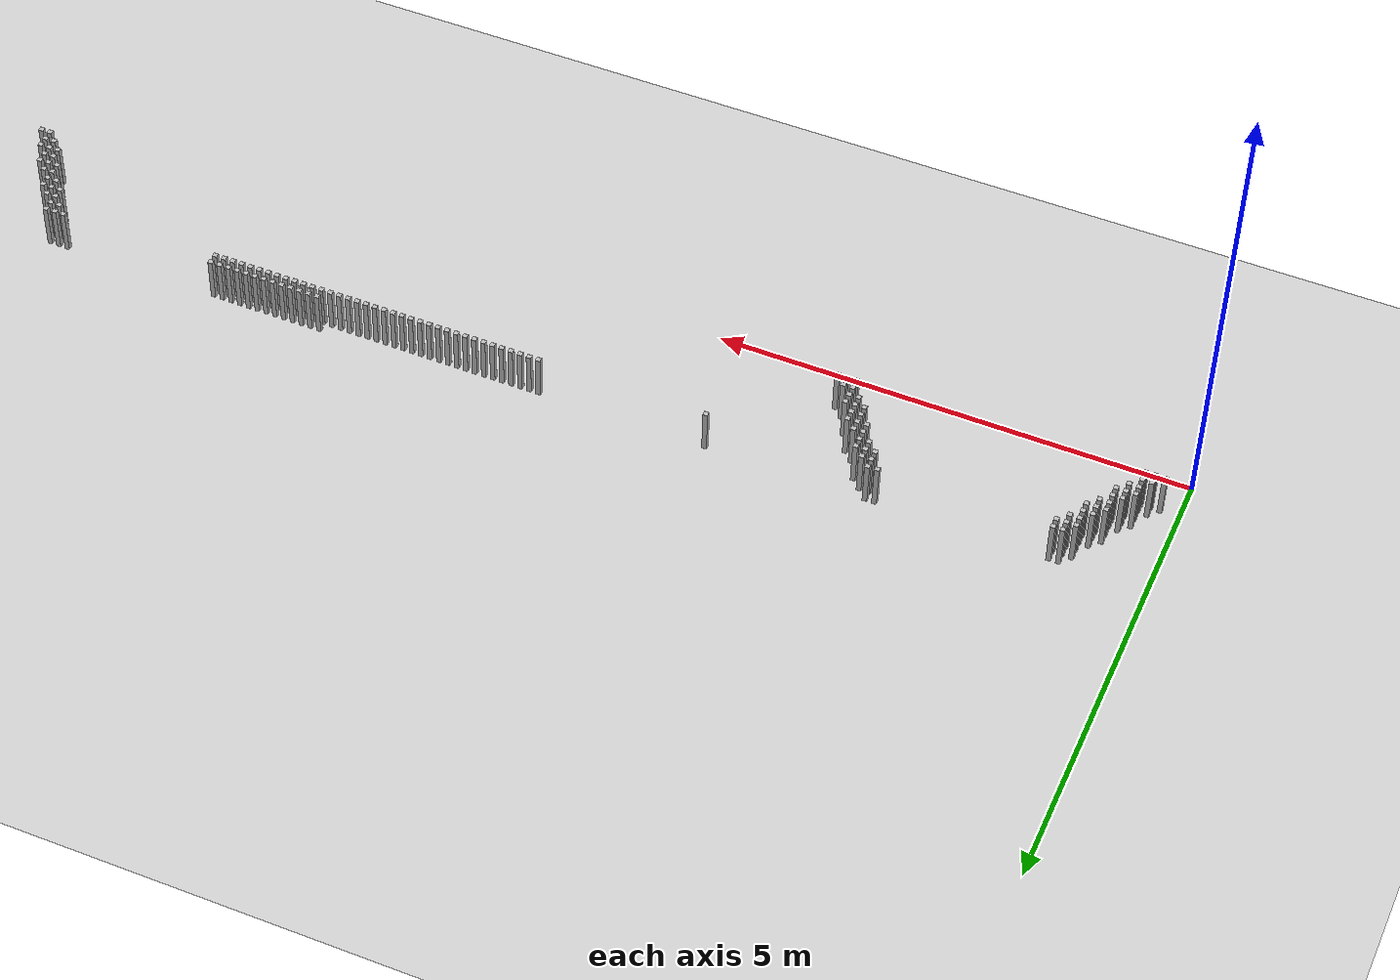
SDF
<sdf version="1.6">
 <world name="default_world">
  <include><uri>model://sun</uri></include>
  <include><uri>model://ground_plane</uri></include>
  <model name="wall_916">
   <static>true</static>
   <link name="link">
    <collision name="collision"><geometry><box><size>0.05 0.05 0.5</size></box></geometry></collision>
    <visual name="visual"><geometry><box><size>0.05 0.05 0.5</size></box></geometry></visual>
    <pose>8.8 1.5 0.25 0 0 0</pose>
   </link>
  </model>
  <model name="wall_917">
   <static>true</static>
   <link name="link">
    <collision name="collision"><geometry><box><size>0.05 0.05 0.5</size></box></geometry></collision>
    <visual name="visual"><geometry><box><size>0.05 0.05 0.5</size></box></geometry></visual>
    <pose>8.9 1.5 0.25 0 0 0</pose>
   </link>
  </model>
  <model name="wall_918">
   <static>true</static>
   <link name="link">
    <collision name="collision"><geometry><box><size>0.05 0.05 0.5</size></box></geometry></collision>
    <visual name="visual"><geometry><box><size>0.05 0.05 0.5</size></box></geometry></visual>
    <pose>9.0 1.5 0.25 0 0 0</pose>
   </link>
  </model>
  <model name="wall_919">
   <static>true</static>
   <link name="link">
    <collision name="collision"><geometry><box><size>0.05 0.05 0.5</size></box></geometry></collision>
    <visual name="visual"><geometry><box><size>0.05 0.05 0.5</size></box></geometry></visual>
    <pose>9.1 1.5 0.25 0 0 0</pose>
   </link>
  </model>
  <model name="wall_920">
   <static>true</static>
   <link name="link">
    <collision name="collision"><geometry><box><size>0.05 0.05 0.5</size></box></geometry></collision>
    <visual name="visual"><geometry><box><size>0.05 0.05 0.5</size></box></geometry></visual>
    <pose>9.200000000000001 1.5 0.25 0 0 0</pose>
   </link>
  </model>
  <model name="wall_921">
   <static>true</static>
   <link name="link">
    <collision name="collision"><geometry><box><size>0.05 0.05 0.5</size></box></geometry></collision>
    <visual name="visual"><geometry><box><size>0.05 0.05 0.5</size></box></geometry></visual>
    <pose>9.3 1.5 0.25 0 0 0</pose>
   </link>
  </model>
  <model name="wall_922">
   <static>true</static>
   <link name="link">
    <collision name="collision"><geometry><box><size>0.05 0.05 0.5</size></box></geometry></collision>
    <visual name="visual"><geometry><box><size>0.05 0.05 0.5</size></box></geometry></visual>
    <pose>9.4 1.5 0.25 0 0 0</pose>
   </link>
  </model>
  <model name="wall_923">
   <static>true</static>
   <link name="link">
    <collision name="collision"><geometry><box><size>0.05 0.05 0.5</size></box></geometry></collision>
    <visual name="visual"><geometry><box><size>0.05 0.05 0.5</size></box></geometry></visual>
    <pose>9.5 1.5 0.25 0 0 0</pose>
   </link>
  </model>
  <model name="wall_924">
   <static>true</static>
   <link name="link">
    <collision name="collision"><geometry><box><size>0.05 0.05 0.5</size></box></geometry></collision>
    <visual name="visual"><geometry><box><size>0.05 0.05 0.5</size></box></geometry></visual>
    <pose>9.600000000000001 1.5 0.25 0 0 0</pose>
   </link>
  </model>
  <model name="wall_925">
   <static>true</static>
   <link name="link">
    <collision name="collision"><geometry><box><size>0.05 0.05 0.5</size></box></geometry></collision>
    <visual name="visual"><geometry><box><size>0.05 0.05 0.5</size></box></geometry></visual>
    <pose>9.700000000000001 1.5 0.25 0 0 0</pose>
   </link>
  </model>
  <model name="wall_926">
   <static>true</static>
   <link name="link">
    <collision name="collision"><geometry><box><size>0.05 0.05 0.5</size></box></geometry></collision>
    <visual name="visual"><geometry><box><size>0.05 0.05 0.5</size></box></geometry></visual>
    <pose>9.8 1.5 0.25 0 0 0</pose>
   </link>
  </model>
  <model name="wall_927">
   <static>true</static>
   <link name="link">
    <collision name="collision"><geometry><box><size>0.05 0.05 0.5</size></box></geometry></collision>
    <visual name="visual"><geometry><box><size>0.05 0.05 0.5</size></box></geometry></visual>
    <pose>9.9 1.5 0.25 0 0 0</pose>
   </link>
  </model>
  <model name="wall_928">
   <static>true</static>
   <link name="link">
    <collision name="collision"><geometry><box><size>0.05 0.05 0.5</size></box></geometry></collision>
    <visual name="visual"><geometry><box><size>0.05 0.05 0.5</size></box></geometry></visual>
    <pose>10.0 1.5 0.25 0 0 0</pose>
   </link>
  </model>
  <model name="wall_929">
   <static>true</static>
   <link name="link">
    <collision name="collision"><geometry><box><size>0.05 0.05 0.5</size></box></geometry></collision>
    <visual name="visual"><geometry><box><size>0.05 0.05 0.5</size></box></geometry></visual>
    <pose>11.700000000000001 1.5 0.25 0 0 0</pose>
   </link>
  </model>
  <model name="wall_930">
   <static>true</static>
   <link name="link">
    <collision name="collision"><geometry><box><size>0.05 0.05 0.5</size></box></geometry></collision>
    <visual name="visual"><geometry><box><size>0.05 0.05 0.5</size></box></geometry></visual>
    <pose>11.8 1.5 0.25 0 0 0</pose>
   </link>
  </model>
  <model name="wall_931">
   <static>true</static>
   <link name="link">
    <collision name="collision"><geometry><box><size>0.05 0.05 0.5</size></box></geometry></collision>
    <visual name="visual"><geometry><box><size>0.05 0.05 0.5</size></box></geometry></visual>
    <pose>11.9 1.5 0.25 0 0 0</pose>
   </link>
  </model>
  <model name="wall_932">
   <static>true</static>
   <link name="link">
    <collision name="collision"><geometry><box><size>0.05 0.05 0.5</size></box></geometry></collision>
    <visual name="visual"><geometry><box><size>0.05 0.05 0.5</size></box></geometry></visual>
    <pose>0.9 1.4000000000000001 0.25 0 0 0</pose>
   </link>
  </model>
  <model name="wall_933">
   <static>true</static>
   <link name="link">
    <collision name="collision"><geometry><box><size>0.05 0.05 0.5</size></box></geometry></collision>
    <visual name="visual"><geometry><box><size>0.05 0.05 0.5</size></box></geometry></visual>
    <pose>1.0 1.4000000000000001 0.25 0 0 0</pose>
   </link>
  </model>
  <model name="wall_934">
   <static>true</static>
   <link name="link">
    <collision name="collision"><geometry><box><size>0.05 0.05 0.5</size></box></geometry></collision>
    <visual name="visual"><geometry><box><size>0.05 0.05 0.5</size></box></geometry></visual>
    <pose>2.8000000000000003 1.4000000000000001 0.25 0 0 0</pose>
   </link>
  </model>
  <model name="wall_935">
   <static>true</static>
   <link name="link">
    <collision name="collision"><geometry><box><size>0.05 0.05 0.5</size></box></geometry></collision>
    <visual name="visual"><geometry><box><size>0.05 0.05 0.5</size></box></geometry></visual>
    <pose>2.9000000000000004 1.4000000000000001 0.25 0 0 0</pose>
   </link>
  </model>
  <model name="wall_936">
   <static>true</static>
   <link name="link">
    <collision name="collision"><geometry><box><size>0.05 0.05 0.5</size></box></geometry></collision>
    <visual name="visual"><geometry><box><size>0.05 0.05 0.5</size></box></geometry></visual>
    <pose>4.6000000000000005 1.4000000000000001 0.25 0 0 0</pose>
   </link>
  </model>
  <model name="wall_937">
   <static>true</static>
   <link name="link">
    <collision name="collision"><geometry><box><size>0.05 0.05 0.5</size></box></geometry></collision>
    <visual name="visual"><geometry><box><size>0.05 0.05 0.5</size></box></geometry></visual>
    <pose>6.4 1.4000000000000001 0.25 0 0 0</pose>
   </link>
  </model>
  <model name="wall_938">
   <static>true</static>
   <link name="link">
    <collision name="collision"><geometry><box><size>0.05 0.05 0.5</size></box></geometry></collision>
    <visual name="visual"><geometry><box><size>0.05 0.05 0.5</size></box></geometry></visual>
    <pose>6.5 1.4000000000000001 0.25 0 0 0</pose>
   </link>
  </model>
  <model name="wall_939">
   <static>true</static>
   <link name="link">
    <collision name="collision"><geometry><box><size>0.05 0.05 0.5</size></box></geometry></collision>
    <visual name="visual"><geometry><box><size>0.05 0.05 0.5</size></box></geometry></visual>
    <pose>6.6000000000000005 1.4000000000000001 0.25 0 0 0</pose>
   </link>
  </model>
  <model name="wall_940">
   <static>true</static>
   <link name="link">
    <collision name="collision"><geometry><box><size>0.05 0.05 0.5</size></box></geometry></collision>
    <visual name="visual"><geometry><box><size>0.05 0.05 0.5</size></box></geometry></visual>
    <pose>6.7 1.4000000000000001 0.25 0 0 0</pose>
   </link>
  </model>
  <model name="wall_941">
   <static>true</static>
   <link name="link">
    <collision name="collision"><geometry><box><size>0.05 0.05 0.5</size></box></geometry></collision>
    <visual name="visual"><geometry><box><size>0.05 0.05 0.5</size></box></geometry></visual>
    <pose>6.800000000000001 1.4000000000000001 0.25 0 0 0</pose>
   </link>
  </model>
  <model name="wall_942">
   <static>true</static>
   <link name="link">
    <collision name="collision"><geometry><box><size>0.05 0.05 0.5</size></box></geometry></collision>
    <visual name="visual"><geometry><box><size>0.05 0.05 0.5</size></box></geometry></visual>
    <pose>6.9 1.4000000000000001 0.25 0 0 0</pose>
   </link>
  </model>
  <model name="wall_943">
   <static>true</static>
   <link name="link">
    <collision name="collision"><geometry><box><size>0.05 0.05 0.5</size></box></geometry></collision>
    <visual name="visual"><geometry><box><size>0.05 0.05 0.5</size></box></geometry></visual>
    <pose>7.0 1.4000000000000001 0.25 0 0 0</pose>
   </link>
  </model>
  <model name="wall_944">
   <static>true</static>
   <link name="link">
    <collision name="collision"><geometry><box><size>0.05 0.05 0.5</size></box></geometry></collision>
    <visual name="visual"><geometry><box><size>0.05 0.05 0.5</size></box></geometry></visual>
    <pose>7.1000000000000005 1.4000000000000001 0.25 0 0 0</pose>
   </link>
  </model>
  <model name="wall_945">
   <static>true</static>
   <link name="link">
    <collision name="collision"><geometry><box><size>0.05 0.05 0.5</size></box></geometry></collision>
    <visual name="visual"><geometry><box><size>0.05 0.05 0.5</size></box></geometry></visual>
    <pose>7.2 1.4000000000000001 0.25 0 0 0</pose>
   </link>
  </model>
  <model name="wall_946">
   <static>true</static>
   <link name="link">
    <collision name="collision"><geometry><box><size>0.05 0.05 0.5</size></box></geometry></collision>
    <visual name="visual"><geometry><box><size>0.05 0.05 0.5</size></box></geometry></visual>
    <pose>7.300000000000001 1.4000000000000001 0.25 0 0 0</pose>
   </link>
  </model>
  <model name="wall_947">
   <static>true</static>
   <link name="link">
    <collision name="collision"><geometry><box><size>0.05 0.05 0.5</size></box></geometry></collision>
    <visual name="visual"><geometry><box><size>0.05 0.05 0.5</size></box></geometry></visual>
    <pose>7.4 1.4000000000000001 0.25 0 0 0</pose>
   </link>
  </model>
  <model name="wall_948">
   <static>true</static>
   <link name="link">
    <collision name="collision"><geometry><box><size>0.05 0.05 0.5</size></box></geometry></collision>
    <visual name="visual"><geometry><box><size>0.05 0.05 0.5</size></box></geometry></visual>
    <pose>7.5 1.4000000000000001 0.25 0 0 0</pose>
   </link>
  </model>
  <model name="wall_949">
   <static>true</static>
   <link name="link">
    <collision name="collision"><geometry><box><size>0.05 0.05 0.5</size></box></geometry></collision>
    <visual name="visual"><geometry><box><size>0.05 0.05 0.5</size></box></geometry></visual>
    <pose>7.6000000000000005 1.4000000000000001 0.25 0 0 0</pose>
   </link>
  </model>
  <model name="wall_950">
   <static>true</static>
   <link name="link">
    <collision name="collision"><geometry><box><size>0.05 0.05 0.5</size></box></geometry></collision>
    <visual name="visual"><geometry><box><size>0.05 0.05 0.5</size></box></geometry></visual>
    <pose>7.7 1.4000000000000001 0.25 0 0 0</pose>
   </link>
  </model>
  <model name="wall_951">
   <static>true</static>
   <link name="link">
    <collision name="collision"><geometry><box><size>0.05 0.05 0.5</size></box></geometry></collision>
    <visual name="visual"><geometry><box><size>0.05 0.05 0.5</size></box></geometry></visual>
    <pose>7.800000000000001 1.4000000000000001 0.25 0 0 0</pose>
   </link>
  </model>
  <model name="wall_952">
   <static>true</static>
   <link name="link">
    <collision name="collision"><geometry><box><size>0.05 0.05 0.5</size></box></geometry></collision>
    <visual name="visual"><geometry><box><size>0.05 0.05 0.5</size></box></geometry></visual>
    <pose>7.9 1.4000000000000001 0.25 0 0 0</pose>
   </link>
  </model>
  <model name="wall_953">
   <static>true</static>
   <link name="link">
    <collision name="collision"><geometry><box><size>0.05 0.05 0.5</size></box></geometry></collision>
    <visual name="visual"><geometry><box><size>0.05 0.05 0.5</size></box></geometry></visual>
    <pose>8.0 1.4000000000000001 0.25 0 0 0</pose>
   </link>
  </model>
  <model name="wall_954">
   <static>true</static>
   <link name="link">
    <collision name="collision"><geometry><box><size>0.05 0.05 0.5</size></box></geometry></collision>
    <visual name="visual"><geometry><box><size>0.05 0.05 0.5</size></box></geometry></visual>
    <pose>8.1 1.4000000000000001 0.25 0 0 0</pose>
   </link>
  </model>
  <model name="wall_955">
   <static>true</static>
   <link name="link">
    <collision name="collision"><geometry><box><size>0.05 0.05 0.5</size></box></geometry></collision>
    <visual name="visual"><geometry><box><size>0.05 0.05 0.5</size></box></geometry></visual>
    <pose>8.200000000000001 1.4000000000000001 0.25 0 0 0</pose>
   </link>
  </model>
  <model name="wall_956">
   <static>true</static>
   <link name="link">
    <collision name="collision"><geometry><box><size>0.05 0.05 0.5</size></box></geometry></collision>
    <visual name="visual"><geometry><box><size>0.05 0.05 0.5</size></box></geometry></visual>
    <pose>8.3 1.4000000000000001 0.25 0 0 0</pose>
   </link>
  </model>
  <model name="wall_957">
   <static>true</static>
   <link name="link">
    <collision name="collision"><geometry><box><size>0.05 0.05 0.5</size></box></geometry></collision>
    <visual name="visual"><geometry><box><size>0.05 0.05 0.5</size></box></geometry></visual>
    <pose>8.4 1.4000000000000001 0.25 0 0 0</pose>
   </link>
  </model>
  <model name="wall_958">
   <static>true</static>
   <link name="link">
    <collision name="collision"><geometry><box><size>0.05 0.05 0.5</size></box></geometry></collision>
    <visual name="visual"><geometry><box><size>0.05 0.05 0.5</size></box></geometry></visual>
    <pose>8.5 1.4000000000000001 0.25 0 0 0</pose>
   </link>
  </model>
  <model name="wall_959">
   <static>true</static>
   <link name="link">
    <collision name="collision"><geometry><box><size>0.05 0.05 0.5</size></box></geometry></collision>
    <visual name="visual"><geometry><box><size>0.05 0.05 0.5</size></box></geometry></visual>
    <pose>8.6 1.4000000000000001 0.25 0 0 0</pose>
   </link>
  </model>
  <model name="wall_960">
   <static>true</static>
   <link name="link">
    <collision name="collision"><geometry><box><size>0.05 0.05 0.5</size></box></geometry></collision>
    <visual name="visual"><geometry><box><size>0.05 0.05 0.5</size></box></geometry></visual>
    <pose>8.700000000000001 1.4000000000000001 0.25 0 0 0</pose>
   </link>
  </model>
  <model name="wall_961">
   <static>true</static>
   <link name="link">
    <collision name="collision"><geometry><box><size>0.05 0.05 0.5</size></box></geometry></collision>
    <visual name="visual"><geometry><box><size>0.05 0.05 0.5</size></box></geometry></visual>
    <pose>8.8 1.4000000000000001 0.25 0 0 0</pose>
   </link>
  </model>
  <model name="wall_962">
   <static>true</static>
   <link name="link">
    <collision name="collision"><geometry><box><size>0.05 0.05 0.5</size></box></geometry></collision>
    <visual name="visual"><geometry><box><size>0.05 0.05 0.5</size></box></geometry></visual>
    <pose>8.9 1.4000000000000001 0.25 0 0 0</pose>
   </link>
  </model>
  <model name="wall_963">
   <static>true</static>
   <link name="link">
    <collision name="collision"><geometry><box><size>0.05 0.05 0.5</size></box></geometry></collision>
    <visual name="visual"><geometry><box><size>0.05 0.05 0.5</size></box></geometry></visual>
    <pose>9.0 1.4000000000000001 0.25 0 0 0</pose>
   </link>
  </model>
  <model name="wall_964">
   <static>true</static>
   <link name="link">
    <collision name="collision"><geometry><box><size>0.05 0.05 0.5</size></box></geometry></collision>
    <visual name="visual"><geometry><box><size>0.05 0.05 0.5</size></box></geometry></visual>
    <pose>9.1 1.4000000000000001 0.25 0 0 0</pose>
   </link>
  </model>
  <model name="wall_965">
   <static>true</static>
   <link name="link">
    <collision name="collision"><geometry><box><size>0.05 0.05 0.5</size></box></geometry></collision>
    <visual name="visual"><geometry><box><size>0.05 0.05 0.5</size></box></geometry></visual>
    <pose>9.200000000000001 1.4000000000000001 0.25 0 0 0</pose>
   </link>
  </model>
  <model name="wall_966">
   <static>true</static>
   <link name="link">
    <collision name="collision"><geometry><box><size>0.05 0.05 0.5</size></box></geometry></collision>
    <visual name="visual"><geometry><box><size>0.05 0.05 0.5</size></box></geometry></visual>
    <pose>9.3 1.4000000000000001 0.25 0 0 0</pose>
   </link>
  </model>
  <model name="wall_967">
   <static>true</static>
   <link name="link">
    <collision name="collision"><geometry><box><size>0.05 0.05 0.5</size></box></geometry></collision>
    <visual name="visual"><geometry><box><size>0.05 0.05 0.5</size></box></geometry></visual>
    <pose>9.4 1.4000000000000001 0.25 0 0 0</pose>
   </link>
  </model>
  <model name="wall_968">
   <static>true</static>
   <link name="link">
    <collision name="collision"><geometry><box><size>0.05 0.05 0.5</size></box></geometry></collision>
    <visual name="visual"><geometry><box><size>0.05 0.05 0.5</size></box></geometry></visual>
    <pose>9.5 1.4000000000000001 0.25 0 0 0</pose>
   </link>
  </model>
  <model name="wall_969">
   <static>true</static>
   <link name="link">
    <collision name="collision"><geometry><box><size>0.05 0.05 0.5</size></box></geometry></collision>
    <visual name="visual"><geometry><box><size>0.05 0.05 0.5</size></box></geometry></visual>
    <pose>9.600000000000001 1.4000000000000001 0.25 0 0 0</pose>
   </link>
  </model>
  <model name="wall_970">
   <static>true</static>
   <link name="link">
    <collision name="collision"><geometry><box><size>0.05 0.05 0.5</size></box></geometry></collision>
    <visual name="visual"><geometry><box><size>0.05 0.05 0.5</size></box></geometry></visual>
    <pose>9.700000000000001 1.4000000000000001 0.25 0 0 0</pose>
   </link>
  </model>
  <model name="wall_971">
   <static>true</static>
   <link name="link">
    <collision name="collision"><geometry><box><size>0.05 0.05 0.5</size></box></geometry></collision>
    <visual name="visual"><geometry><box><size>0.05 0.05 0.5</size></box></geometry></visual>
    <pose>9.8 1.4000000000000001 0.25 0 0 0</pose>
   </link>
  </model>
  <model name="wall_972">
   <static>true</static>
   <link name="link">
    <collision name="collision"><geometry><box><size>0.05 0.05 0.5</size></box></geometry></collision>
    <visual name="visual"><geometry><box><size>0.05 0.05 0.5</size></box></geometry></visual>
    <pose>9.9 1.4000000000000001 0.25 0 0 0</pose>
   </link>
  </model>
  <model name="wall_973">
   <static>true</static>
   <link name="link">
    <collision name="collision"><geometry><box><size>0.05 0.05 0.5</size></box></geometry></collision>
    <visual name="visual"><geometry><box><size>0.05 0.05 0.5</size></box></geometry></visual>
    <pose>10.0 1.4000000000000001 0.25 0 0 0</pose>
   </link>
  </model>
  <model name="wall_974">
   <static>true</static>
   <link name="link">
    <collision name="collision"><geometry><box><size>0.05 0.05 0.5</size></box></geometry></collision>
    <visual name="visual"><geometry><box><size>0.05 0.05 0.5</size></box></geometry></visual>
    <pose>11.8 1.4000000000000001 0.25 0 0 0</pose>
   </link>
  </model>
  <model name="wall_975">
   <static>true</static>
   <link name="link">
    <collision name="collision"><geometry><box><size>0.05 0.05 0.5</size></box></geometry></collision>
    <visual name="visual"><geometry><box><size>0.05 0.05 0.5</size></box></geometry></visual>
    <pose>11.9 1.4000000000000001 0.25 0 0 0</pose>
   </link>
  </model>
  <model name="wall_976">
   <static>true</static>
   <link name="link">
    <collision name="collision"><geometry><box><size>0.05 0.05 0.5</size></box></geometry></collision>
    <visual name="visual"><geometry><box><size>0.05 0.05 0.5</size></box></geometry></visual>
    <pose>0.8 1.3 0.25 0 0 0</pose>
   </link>
  </model>
  <model name="wall_977">
   <static>true</static>
   <link name="link">
    <collision name="collision"><geometry><box><size>0.05 0.05 0.5</size></box></geometry></collision>
    <visual name="visual"><geometry><box><size>0.05 0.05 0.5</size></box></geometry></visual>
    <pose>0.9 1.3 0.25 0 0 0</pose>
   </link>
  </model>
  <model name="wall_978">
   <static>true</static>
   <link name="link">
    <collision name="collision"><geometry><box><size>0.05 0.05 0.5</size></box></geometry></collision>
    <visual name="visual"><geometry><box><size>0.05 0.05 0.5</size></box></geometry></visual>
    <pose>1.0 1.3 0.25 0 0 0</pose>
   </link>
  </model>
  <model name="wall_979">
   <static>true</static>
   <link name="link">
    <collision name="collision"><geometry><box><size>0.05 0.05 0.5</size></box></geometry></collision>
    <visual name="visual"><geometry><box><size>0.05 0.05 0.5</size></box></geometry></visual>
    <pose>2.9000000000000004 1.3 0.25 0 0 0</pose>
   </link>
  </model>
  <model name="wall_980">
   <static>true</static>
   <link name="link">
    <collision name="collision"><geometry><box><size>0.05 0.05 0.5</size></box></geometry></collision>
    <visual name="visual"><geometry><box><size>0.05 0.05 0.5</size></box></geometry></visual>
    <pose>3.0 1.3 0.25 0 0 0</pose>
   </link>
  </model>
  <model name="wall_981">
   <static>true</static>
   <link name="link">
    <collision name="collision"><geometry><box><size>0.05 0.05 0.5</size></box></geometry></collision>
    <visual name="visual"><geometry><box><size>0.05 0.05 0.5</size></box></geometry></visual>
    <pose>11.9 1.3 0.25 0 0 0</pose>
   </link>
  </model>
  <model name="wall_982">
   <static>true</static>
   <link name="link">
    <collision name="collision"><geometry><box><size>0.05 0.05 0.5</size></box></geometry></collision>
    <visual name="visual"><geometry><box><size>0.05 0.05 0.5</size></box></geometry></visual>
    <pose>12.0 1.3 0.25 0 0 0</pose>
   </link>
  </model>
  <model name="wall_983">
   <static>true</static>
   <link name="link">
    <collision name="collision"><geometry><box><size>0.05 0.05 0.5</size></box></geometry></collision>
    <visual name="visual"><geometry><box><size>0.05 0.05 0.5</size></box></geometry></visual>
    <pose>0.8 1.2000000000000002 0.25 0 0 0</pose>
   </link>
  </model>
  <model name="wall_984">
   <static>true</static>
   <link name="link">
    <collision name="collision"><geometry><box><size>0.05 0.05 0.5</size></box></geometry></collision>
    <visual name="visual"><geometry><box><size>0.05 0.05 0.5</size></box></geometry></visual>
    <pose>0.9 1.2000000000000002 0.25 0 0 0</pose>
   </link>
  </model>
  <model name="wall_985">
   <static>true</static>
   <link name="link">
    <collision name="collision"><geometry><box><size>0.05 0.05 0.5</size></box></geometry></collision>
    <visual name="visual"><geometry><box><size>0.05 0.05 0.5</size></box></geometry></visual>
    <pose>2.9000000000000004 1.2000000000000002 0.25 0 0 0</pose>
   </link>
  </model>
  <model name="wall_986">
   <static>true</static>
   <link name="link">
    <collision name="collision"><geometry><box><size>0.05 0.05 0.5</size></box></geometry></collision>
    <visual name="visual"><geometry><box><size>0.05 0.05 0.5</size></box></geometry></visual>
    <pose>3.0 1.2000000000000002 0.25 0 0 0</pose>
   </link>
  </model>
  <model name="wall_987">
   <static>true</static>
   <link name="link">
    <collision name="collision"><geometry><box><size>0.05 0.05 0.5</size></box></geometry></collision>
    <visual name="visual"><geometry><box><size>0.05 0.05 0.5</size></box></geometry></visual>
    <pose>3.1 1.2000000000000002 0.25 0 0 0</pose>
   </link>
  </model>
  <model name="wall_988">
   <static>true</static>
   <link name="link">
    <collision name="collision"><geometry><box><size>0.05 0.05 0.5</size></box></geometry></collision>
    <visual name="visual"><geometry><box><size>0.05 0.05 0.5</size></box></geometry></visual>
    <pose>11.9 1.2000000000000002 0.25 0 0 0</pose>
   </link>
  </model>
  <model name="wall_989">
   <static>true</static>
   <link name="link">
    <collision name="collision"><geometry><box><size>0.05 0.05 0.5</size></box></geometry></collision>
    <visual name="visual"><geometry><box><size>0.05 0.05 0.5</size></box></geometry></visual>
    <pose>12.0 1.2000000000000002 0.25 0 0 0</pose>
   </link>
  </model>
  <model name="wall_990">
   <static>true</static>
   <link name="link">
    <collision name="collision"><geometry><box><size>0.05 0.05 0.5</size></box></geometry></collision>
    <visual name="visual"><geometry><box><size>0.05 0.05 0.5</size></box></geometry></visual>
    <pose>12.100000000000001 1.2000000000000002 0.25 0 0 0</pose>
   </link>
  </model>
  <model name="wall_991">
   <static>true</static>
   <link name="link">
    <collision name="collision"><geometry><box><size>0.05 0.05 0.5</size></box></geometry></collision>
    <visual name="visual"><geometry><box><size>0.05 0.05 0.5</size></box></geometry></visual>
    <pose>0.7000000000000001 1.1 0.25 0 0 0</pose>
   </link>
  </model>
  <model name="wall_992">
   <static>true</static>
   <link name="link">
    <collision name="collision"><geometry><box><size>0.05 0.05 0.5</size></box></geometry></collision>
    <visual name="visual"><geometry><box><size>0.05 0.05 0.5</size></box></geometry></visual>
    <pose>0.8 1.1 0.25 0 0 0</pose>
   </link>
  </model>
  <model name="wall_993">
   <static>true</static>
   <link name="link">
    <collision name="collision"><geometry><box><size>0.05 0.05 0.5</size></box></geometry></collision>
    <visual name="visual"><geometry><box><size>0.05 0.05 0.5</size></box></geometry></visual>
    <pose>3.0 1.1 0.25 0 0 0</pose>
   </link>
  </model>
  <model name="wall_994">
   <static>true</static>
   <link name="link">
    <collision name="collision"><geometry><box><size>0.05 0.05 0.5</size></box></geometry></collision>
    <visual name="visual"><geometry><box><size>0.05 0.05 0.5</size></box></geometry></visual>
    <pose>3.1 1.1 0.25 0 0 0</pose>
   </link>
  </model>
  <model name="wall_995">
   <static>true</static>
   <link name="link">
    <collision name="collision"><geometry><box><size>0.05 0.05 0.5</size></box></geometry></collision>
    <visual name="visual"><geometry><box><size>0.05 0.05 0.5</size></box></geometry></visual>
    <pose>12.0 1.1 0.25 0 0 0</pose>
   </link>
  </model>
  <model name="wall_996">
   <static>true</static>
   <link name="link">
    <collision name="collision"><geometry><box><size>0.05 0.05 0.5</size></box></geometry></collision>
    <visual name="visual"><geometry><box><size>0.05 0.05 0.5</size></box></geometry></visual>
    <pose>12.100000000000001 1.1 0.25 0 0 0</pose>
   </link>
  </model>
  <model name="wall_997">
   <static>true</static>
   <link name="link">
    <collision name="collision"><geometry><box><size>0.05 0.05 0.5</size></box></geometry></collision>
    <visual name="visual"><geometry><box><size>0.05 0.05 0.5</size></box></geometry></visual>
    <pose>0.6000000000000001 1.0 0.25 0 0 0</pose>
   </link>
  </model>
  <model name="wall_998">
   <static>true</static>
   <link name="link">
    <collision name="collision"><geometry><box><size>0.05 0.05 0.5</size></box></geometry></collision>
    <visual name="visual"><geometry><box><size>0.05 0.05 0.5</size></box></geometry></visual>
    <pose>0.7000000000000001 1.0 0.25 0 0 0</pose>
   </link>
  </model>
  <model name="wall_999">
   <static>true</static>
   <link name="link">
    <collision name="collision"><geometry><box><size>0.05 0.05 0.5</size></box></geometry></collision>
    <visual name="visual"><geometry><box><size>0.05 0.05 0.5</size></box></geometry></visual>
    <pose>0.8 1.0 0.25 0 0 0</pose>
   </link>
  </model>
  <model name="wall_1000">
   <static>true</static>
   <link name="link">
    <collision name="collision"><geometry><box><size>0.05 0.05 0.5</size></box></geometry></collision>
    <visual name="visual"><geometry><box><size>0.05 0.05 0.5</size></box></geometry></visual>
    <pose>3.1 1.0 0.25 0 0 0</pose>
   </link>
  </model>
  <model name="wall_1001">
   <static>true</static>
   <link name="link">
    <collision name="collision"><geometry><box><size>0.05 0.05 0.5</size></box></geometry></collision>
    <visual name="visual"><geometry><box><size>0.05 0.05 0.5</size></box></geometry></visual>
    <pose>3.2 1.0 0.25 0 0 0</pose>
   </link>
  </model>
  <model name="wall_1002">
   <static>true</static>
   <link name="link">
    <collision name="collision"><geometry><box><size>0.05 0.05 0.5</size></box></geometry></collision>
    <visual name="visual"><geometry><box><size>0.05 0.05 0.5</size></box></geometry></visual>
    <pose>12.100000000000001 1.0 0.25 0 0 0</pose>
   </link>
  </model>
  <model name="wall_1003">
   <static>true</static>
   <link name="link">
    <collision name="collision"><geometry><box><size>0.05 0.05 0.5</size></box></geometry></collision>
    <visual name="visual"><geometry><box><size>0.05 0.05 0.5</size></box></geometry></visual>
    <pose>12.200000000000001 1.0 0.25 0 0 0</pose>
   </link>
  </model>
  <model name="wall_1004">
   <static>true</static>
   <link name="link">
    <collision name="collision"><geometry><box><size>0.05 0.05 0.5</size></box></geometry></collision>
    <visual name="visual"><geometry><box><size>0.05 0.05 0.5</size></box></geometry></visual>
    <pose>0.6000000000000001 0.9 0.25 0 0 0</pose>
   </link>
  </model>
  <model name="wall_1005">
   <static>true</static>
   <link name="link">
    <collision name="collision"><geometry><box><size>0.05 0.05 0.5</size></box></geometry></collision>
    <visual name="visual"><geometry><box><size>0.05 0.05 0.5</size></box></geometry></visual>
    <pose>0.7000000000000001 0.9 0.25 0 0 0</pose>
   </link>
  </model>
  <model name="wall_1006">
   <static>true</static>
   <link name="link">
    <collision name="collision"><geometry><box><size>0.05 0.05 0.5</size></box></geometry></collision>
    <visual name="visual"><geometry><box><size>0.05 0.05 0.5</size></box></geometry></visual>
    <pose>3.1 0.9 0.25 0 0 0</pose>
   </link>
  </model>
  <model name="wall_1007">
   <static>true</static>
   <link name="link">
    <collision name="collision"><geometry><box><size>0.05 0.05 0.5</size></box></geometry></collision>
    <visual name="visual"><geometry><box><size>0.05 0.05 0.5</size></box></geometry></visual>
    <pose>3.2 0.9 0.25 0 0 0</pose>
   </link>
  </model>
  <model name="wall_1008">
   <static>true</static>
   <link name="link">
    <collision name="collision"><geometry><box><size>0.05 0.05 0.5</size></box></geometry></collision>
    <visual name="visual"><geometry><box><size>0.05 0.05 0.5</size></box></geometry></visual>
    <pose>3.3000000000000003 0.9 0.25 0 0 0</pose>
   </link>
  </model>
  <model name="wall_1009">
   <static>true</static>
   <link name="link">
    <collision name="collision"><geometry><box><size>0.05 0.05 0.5</size></box></geometry></collision>
    <visual name="visual"><geometry><box><size>0.05 0.05 0.5</size></box></geometry></visual>
    <pose>12.100000000000001 0.9 0.25 0 0 0</pose>
   </link>
  </model>
  <model name="wall_1010">
   <static>true</static>
   <link name="link">
    <collision name="collision"><geometry><box><size>0.05 0.05 0.5</size></box></geometry></collision>
    <visual name="visual"><geometry><box><size>0.05 0.05 0.5</size></box></geometry></visual>
    <pose>12.200000000000001 0.9 0.25 0 0 0</pose>
   </link>
  </model>
  <model name="wall_1011">
   <static>true</static>
   <link name="link">
    <collision name="collision"><geometry><box><size>0.05 0.05 0.5</size></box></geometry></collision>
    <visual name="visual"><geometry><box><size>0.05 0.05 0.5</size></box></geometry></visual>
    <pose>12.3 0.9 0.25 0 0 0</pose>
   </link>
  </model>
  <model name="wall_1012">
   <static>true</static>
   <link name="link">
    <collision name="collision"><geometry><box><size>0.05 0.05 0.5</size></box></geometry></collision>
    <visual name="visual"><geometry><box><size>0.05 0.05 0.5</size></box></geometry></visual>
    <pose>0.5 0.8 0.25 0 0 0</pose>
   </link>
  </model>
  <model name="wall_1013">
   <static>true</static>
   <link name="link">
    <collision name="collision"><geometry><box><size>0.05 0.05 0.5</size></box></geometry></collision>
    <visual name="visual"><geometry><box><size>0.05 0.05 0.5</size></box></geometry></visual>
    <pose>0.6000000000000001 0.8 0.25 0 0 0</pose>
   </link>
  </model>
  <model name="wall_1014">
   <static>true</static>
   <link name="link">
    <collision name="collision"><geometry><box><size>0.05 0.05 0.5</size></box></geometry></collision>
    <visual name="visual"><geometry><box><size>0.05 0.05 0.5</size></box></geometry></visual>
    <pose>3.2 0.8 0.25 0 0 0</pose>
   </link>
  </model>
  <model name="wall_1015">
   <static>true</static>
   <link name="link">
    <collision name="collision"><geometry><box><size>0.05 0.05 0.5</size></box></geometry></collision>
    <visual name="visual"><geometry><box><size>0.05 0.05 0.5</size></box></geometry></visual>
    <pose>3.3000000000000003 0.8 0.25 0 0 0</pose>
   </link>
  </model>
  <model name="wall_1016">
   <static>true</static>
   <link name="link">
    <collision name="collision"><geometry><box><size>0.05 0.05 0.5</size></box></geometry></collision>
    <visual name="visual"><geometry><box><size>0.05 0.05 0.5</size></box></geometry></visual>
    <pose>12.200000000000001 0.8 0.25 0 0 0</pose>
   </link>
  </model>
  <model name="wall_1017">
   <static>true</static>
   <link name="link">
    <collision name="collision"><geometry><box><size>0.05 0.05 0.5</size></box></geometry></collision>
    <visual name="visual"><geometry><box><size>0.05 0.05 0.5</size></box></geometry></visual>
    <pose>12.3 0.8 0.25 0 0 0</pose>
   </link>
  </model>
  <model name="wall_1018">
   <static>true</static>
   <link name="link">
    <collision name="collision"><geometry><box><size>0.05 0.05 0.5</size></box></geometry></collision>
    <visual name="visual"><geometry><box><size>0.05 0.05 0.5</size></box></geometry></visual>
    <pose>0.4 0.7000000000000001 0.25 0 0 0</pose>
   </link>
  </model>
  <model name="wall_1019">
   <static>true</static>
   <link name="link">
    <collision name="collision"><geometry><box><size>0.05 0.05 0.5</size></box></geometry></collision>
    <visual name="visual"><geometry><box><size>0.05 0.05 0.5</size></box></geometry></visual>
    <pose>0.5 0.7000000000000001 0.25 0 0 0</pose>
   </link>
  </model>
  <model name="wall_1020">
   <static>true</static>
   <link name="link">
    <collision name="collision"><geometry><box><size>0.05 0.05 0.5</size></box></geometry></collision>
    <visual name="visual"><geometry><box><size>0.05 0.05 0.5</size></box></geometry></visual>
    <pose>0.6000000000000001 0.7000000000000001 0.25 0 0 0</pose>
   </link>
  </model>
  <model name="wall_1021">
   <static>true</static>
   <link name="link">
    <collision name="collision"><geometry><box><size>0.05 0.05 0.5</size></box></geometry></collision>
    <visual name="visual"><geometry><box><size>0.05 0.05 0.5</size></box></geometry></visual>
    <pose>3.2 0.7000000000000001 0.25 0 0 0</pose>
   </link>
  </model>
  <model name="wall_1022">
   <static>true</static>
   <link name="link">
    <collision name="collision"><geometry><box><size>0.05 0.05 0.5</size></box></geometry></collision>
    <visual name="visual"><geometry><box><size>0.05 0.05 0.5</size></box></geometry></visual>
    <pose>3.3000000000000003 0.7000000000000001 0.25 0 0 0</pose>
   </link>
  </model>
  <model name="wall_1023">
   <static>true</static>
   <link name="link">
    <collision name="collision"><geometry><box><size>0.05 0.05 0.5</size></box></geometry></collision>
    <visual name="visual"><geometry><box><size>0.05 0.05 0.5</size></box></geometry></visual>
    <pose>3.4000000000000004 0.7000000000000001 0.25 0 0 0</pose>
   </link>
  </model>
  <model name="wall_1024">
   <static>true</static>
   <link name="link">
    <collision name="collision"><geometry><box><size>0.05 0.05 0.5</size></box></geometry></collision>
    <visual name="visual"><geometry><box><size>0.05 0.05 0.5</size></box></geometry></visual>
    <pose>12.200000000000001 0.7000000000000001 0.25 0 0 0</pose>
   </link>
  </model>
  <model name="wall_1025">
   <static>true</static>
   <link name="link">
    <collision name="collision"><geometry><box><size>0.05 0.05 0.5</size></box></geometry></collision>
    <visual name="visual"><geometry><box><size>0.05 0.05 0.5</size></box></geometry></visual>
    <pose>12.3 0.7000000000000001 0.25 0 0 0</pose>
   </link>
  </model>
  <model name="wall_1026">
   <static>true</static>
   <link name="link">
    <collision name="collision"><geometry><box><size>0.05 0.05 0.5</size></box></geometry></collision>
    <visual name="visual"><geometry><box><size>0.05 0.05 0.5</size></box></geometry></visual>
    <pose>12.4 0.7000000000000001 0.25 0 0 0</pose>
   </link>
  </model>
  <model name="wall_1027">
   <static>true</static>
   <link name="link">
    <collision name="collision"><geometry><box><size>0.05 0.05 0.5</size></box></geometry></collision>
    <visual name="visual"><geometry><box><size>0.05 0.05 0.5</size></box></geometry></visual>
    <pose>0.4 0.6000000000000001 0.25 0 0 0</pose>
   </link>
  </model>
  <model name="wall_1028">
   <static>true</static>
   <link name="link">
    <collision name="collision"><geometry><box><size>0.05 0.05 0.5</size></box></geometry></collision>
    <visual name="visual"><geometry><box><size>0.05 0.05 0.5</size></box></geometry></visual>
    <pose>0.5 0.6000000000000001 0.25 0 0 0</pose>
   </link>
  </model>
  <model name="wall_1029">
   <static>true</static>
   <link name="link">
    <collision name="collision"><geometry><box><size>0.05 0.05 0.5</size></box></geometry></collision>
    <visual name="visual"><geometry><box><size>0.05 0.05 0.5</size></box></geometry></visual>
    <pose>3.3000000000000003 0.6000000000000001 0.25 0 0 0</pose>
   </link>
  </model>
  <model name="wall_1030">
   <static>true</static>
   <link name="link">
    <collision name="collision"><geometry><box><size>0.05 0.05 0.5</size></box></geometry></collision>
    <visual name="visual"><geometry><box><size>0.05 0.05 0.5</size></box></geometry></visual>
    <pose>3.4000000000000004 0.6000000000000001 0.25 0 0 0</pose>
   </link>
  </model>
  <model name="wall_1031">
   <static>true</static>
   <link name="link">
    <collision name="collision"><geometry><box><size>0.05 0.05 0.5</size></box></geometry></collision>
    <visual name="visual"><geometry><box><size>0.05 0.05 0.5</size></box></geometry></visual>
    <pose>12.3 0.6000000000000001 0.25 0 0 0</pose>
   </link>
  </model>
  <model name="wall_1032">
   <static>true</static>
   <link name="link">
    <collision name="collision"><geometry><box><size>0.05 0.05 0.5</size></box></geometry></collision>
    <visual name="visual"><geometry><box><size>0.05 0.05 0.5</size></box></geometry></visual>
    <pose>12.4 0.6000000000000001 0.25 0 0 0</pose>
   </link>
  </model>
  <model name="wall_1033">
   <static>true</static>
   <link name="link">
    <collision name="collision"><geometry><box><size>0.05 0.05 0.5</size></box></geometry></collision>
    <visual name="visual"><geometry><box><size>0.05 0.05 0.5</size></box></geometry></visual>
    <pose>0.30000000000000004 0.5 0.25 0 0 0</pose>
   </link>
  </model>
  <model name="wall_1034">
   <static>true</static>
   <link name="link">
    <collision name="collision"><geometry><box><size>0.05 0.05 0.5</size></box></geometry></collision>
    <visual name="visual"><geometry><box><size>0.05 0.05 0.5</size></box></geometry></visual>
    <pose>0.4 0.5 0.25 0 0 0</pose>
   </link>
  </model>
  <model name="wall_1035">
   <static>true</static>
   <link name="link">
    <collision name="collision"><geometry><box><size>0.05 0.05 0.5</size></box></geometry></collision>
    <visual name="visual"><geometry><box><size>0.05 0.05 0.5</size></box></geometry></visual>
    <pose>3.4000000000000004 0.5 0.25 0 0 0</pose>
   </link>
  </model>
  <model name="wall_1036">
   <static>true</static>
   <link name="link">
    <collision name="collision"><geometry><box><size>0.05 0.05 0.5</size></box></geometry></collision>
    <visual name="visual"><geometry><box><size>0.05 0.05 0.5</size></box></geometry></visual>
    <pose>3.5 0.5 0.25 0 0 0</pose>
   </link>
  </model>
  <model name="wall_1037">
   <static>true</static>
   <link name="link">
    <collision name="collision"><geometry><box><size>0.05 0.05 0.5</size></box></geometry></collision>
    <visual name="visual"><geometry><box><size>0.05 0.05 0.5</size></box></geometry></visual>
    <pose>12.4 0.5 0.25 0 0 0</pose>
   </link>
  </model>
  <model name="wall_1038">
   <static>true</static>
   <link name="link">
    <collision name="collision"><geometry><box><size>0.05 0.05 0.5</size></box></geometry></collision>
    <visual name="visual"><geometry><box><size>0.05 0.05 0.5</size></box></geometry></visual>
    <pose>12.5 0.5 0.25 0 0 0</pose>
   </link>
  </model>
  <model name="wall_1039">
   <static>true</static>
   <link name="link">
    <collision name="collision"><geometry><box><size>0.05 0.05 0.5</size></box></geometry></collision>
    <visual name="visual"><geometry><box><size>0.05 0.05 0.5</size></box></geometry></visual>
    <pose>0.2 0.4 0.25 0 0 0</pose>
   </link>
  </model>
  <model name="wall_1040">
   <static>true</static>
   <link name="link">
    <collision name="collision"><geometry><box><size>0.05 0.05 0.5</size></box></geometry></collision>
    <visual name="visual"><geometry><box><size>0.05 0.05 0.5</size></box></geometry></visual>
    <pose>0.30000000000000004 0.4 0.25 0 0 0</pose>
   </link>
  </model>
  <model name="wall_1041">
   <static>true</static>
   <link name="link">
    <collision name="collision"><geometry><box><size>0.05 0.05 0.5</size></box></geometry></collision>
    <visual name="visual"><geometry><box><size>0.05 0.05 0.5</size></box></geometry></visual>
    <pose>0.4 0.4 0.25 0 0 0</pose>
   </link>
  </model>
  <model name="wall_1042">
   <static>true</static>
   <link name="link">
    <collision name="collision"><geometry><box><size>0.05 0.05 0.5</size></box></geometry></collision>
    <visual name="visual"><geometry><box><size>0.05 0.05 0.5</size></box></geometry></visual>
    <pose>3.4000000000000004 0.4 0.25 0 0 0</pose>
   </link>
  </model>
  <model name="wall_1043">
   <static>true</static>
   <link name="link">
    <collision name="collision"><geometry><box><size>0.05 0.05 0.5</size></box></geometry></collision>
    <visual name="visual"><geometry><box><size>0.05 0.05 0.5</size></box></geometry></visual>
    <pose>3.5 0.4 0.25 0 0 0</pose>
   </link>
  </model>
  <model name="wall_1044">
   <static>true</static>
   <link name="link">
    <collision name="collision"><geometry><box><size>0.05 0.05 0.5</size></box></geometry></collision>
    <visual name="visual"><geometry><box><size>0.05 0.05 0.5</size></box></geometry></visual>
    <pose>3.6 0.4 0.25 0 0 0</pose>
   </link>
  </model>
 </world>
</sdf>
